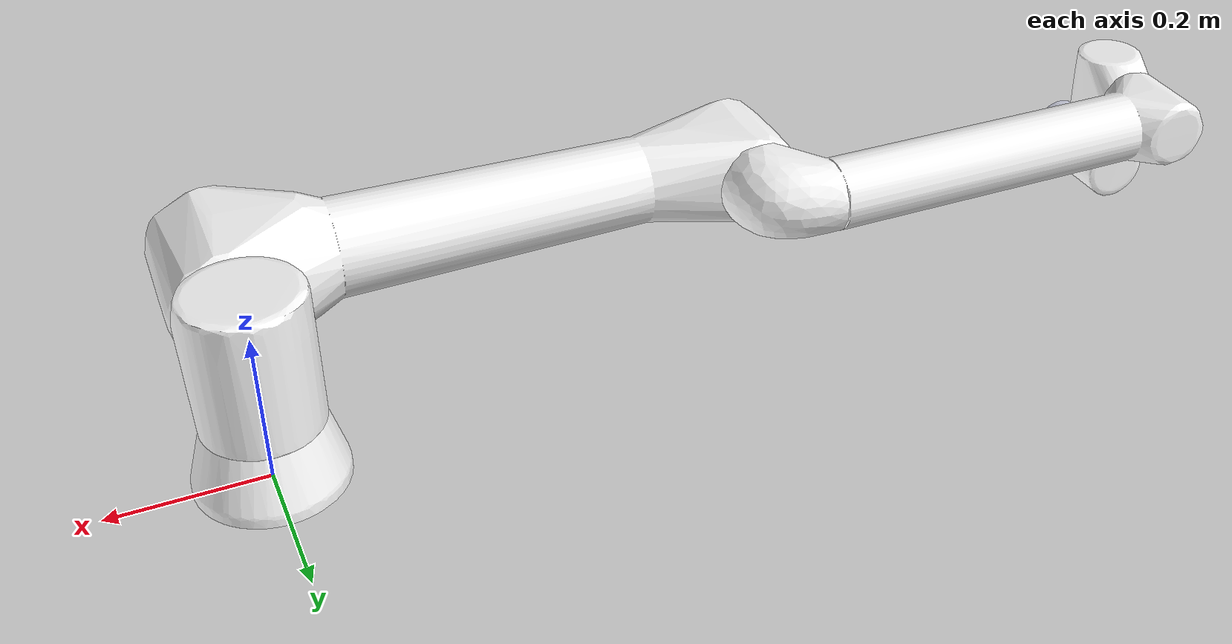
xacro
<?xml version="1.0" encoding="utf-8"?>
<!-- This URDF was artisanally crafted by Jacob Beck (jbeck@spaceroboticsworkers.com) -->
<robot xmlns:xacro="http://wiki.ros.org/xacro" name="fairino10_v6_robot">
  <!-- Declare arguments -->
  <xacro:arg name="namespace" default="" />
  <xacro:arg name="prefix" default="" />
  <xacro:arg name="parent" default="world" />
  <xacro:arg name="xyz" default="0 0 0" />
  <xacro:arg name="rpy" default="0 0 0" />
  <xacro:arg name="mode" default="mock" />
  <xacro:arg name="control_yaml"
    default="$(find fairino10_v6_moveit2_config)/config/ros2_controllers.yaml" />

  <!-- Include required macros -->
  <xacro:include filename="$(find fairino_description)/urdf/fairino10_v6/fairino10_v6.ros2_control.xacro" />
  <xacro:include
    filename="$(find fairino_description)/urdf/fairino10_v6/fairino10_v6.description.xacro" />
  <xacro:include filename="$(find fairino_description)/urdf/fairino10_v6/fairino10_v6.gazebo.xacro" />

  <!-- Build robot -->
  <link name="world" />

  <xacro:fairino10_v6_description prefix="$(arg prefix)" parent="$(arg parent)">
    <origin xyz="$(arg xyz)" rpy="$(arg rpy)" />
  </xacro:fairino10_v6_description>

  <xacro:fairino10_v6_ros2_control prefix="$(arg prefix)" mode="$(arg mode)" />

  <xacro:property name="mode" value="$(arg mode)" /> <!-- Get arg as property for evaluation -->
  <xacro:if value="${mode == 'gazebo'}">
    <xacro:fairino10_v6_gazebo namespace="$(arg namespace)" control_yaml="$(arg control_yaml)" />
  </xacro:if>
</robot>

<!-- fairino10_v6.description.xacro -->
<!-- This URDF was artisanally crafted by Jacob Beck (jbeck@spaceroboticsworkers.com) -->
<robot xmlns:xacro="http://wiki.ros.org/xacro">
  <xacro:macro name="fairino10_v6_description" params="prefix parent *origin">
    <!-- Include definitions -->
    <xacro:include filename="$(find fairino_description)/urdf/common/materials.xacro" />

    <!-- Connection to parent -->
    <joint name="${prefix}base_joint" type="fixed">
      <xacro:insert_block name="origin" />
      <parent link="${parent}" />
      <child link="${prefix}base_link" />
    </joint>

    <!-- Robot geometry definition -->
    <link name="${prefix}base_link">
      <inertial>
        <origin xyz="-0.00037778 -0.00035367 0.035825" rpy="0 0 0" />
        <mass value="0.73775" />
        <inertia ixx="0.0026263" ixy="1.1085E-05" ixz="-8.5601E-06" iyy="0.0026258"
          iyz="-7.9868E-06" izz="0.0044466" />
      </inertial>
      <visual>
        <origin xyz="0 0 0" rpy="0 0 0" />
        <geometry>
          <mesh filename="package://fairino_description/meshes/fairino10_v6/visual/base_link.stl" />
        </geometry>
        <material name="white" />
      </visual>
      <collision>
        <origin xyz="0 0 0" rpy="0 0 0" />
        <geometry>
          <mesh filename="package://fairino_description/meshes/fairino10_v6/collision/base_link_collision.stl" />
        </geometry>
      </collision>
    </link>

    <joint name="${prefix}j1" type="revolute">
      <origin xyz="0 0 0" rpy="0 0 0" />
      <parent link="${prefix}base_link" />
      <child link="${prefix}shoulder_link" />
      <axis xyz="0 0 1" />
      <limit lower="-3.0543" upper="3.0543" effort="635" velocity="3.15" />
      <calibration rising="0" falling="0" />
      <dynamics damping="0" friction="0" />
      <safety_controller soft_upper_limit="3.0543261" soft_lower_limit="-3.0543261"
        k_position="100.0" k_velocity="40.0" />
    </joint>

    <link name="${prefix}shoulder_link">
      <inertial>
        <origin xyz="-0.0001 -0.02612 0.18" rpy="0 0 0" />
        <mass value="11.97" />
        <inertia ixx="0.04607471" ixy="-0.00001041" ixz="-0.00009371" iyy="0.03493881"
          iyz="0.00133107" izz="0.04467851" />
      </inertial>
      <visual>
        <origin xyz="0 0 0" rpy="0 0 0" />
        <geometry>
          <mesh filename="package://fairino_description/meshes/fairino10_v6/visual/shoulder_link.stl" />
        </geometry>
        <material name="white" />
      </visual>
      <collision>
        <origin xyz="0 0 0" rpy="0 0 0" />
        <geometry>
          <mesh filename="package://fairino_description/meshes/fairino10_v6/collision/shoulder_link_collision.stl" />
        </geometry>
      </collision>
    </link>

    <joint name="${prefix}j2" type="revolute">
      <origin xyz="0 0 0.18" rpy="${pi / 2} 0 0" />
      <parent link="${prefix}shoulder_link" />
      <child link="${prefix}upperarm_link" />
      <axis xyz="0 0 1" />
      <limit lower="-4.6251" upper="1.4835" effort="635" velocity="3.15" />
      <calibration rising="0" falling="0" />
      <dynamics damping="0" friction="0" />
      <safety_controller soft_upper_limit="1.4835" soft_lower_limit="-4.6251" k_position="100.0"
        k_velocity="40.0" />
    </joint>

    <link name="${prefix}upperarm_link">
      <inertial>
        <origin xyz="-0.48027 0.00001 0.16468" rpy="0 0 0" />
        <mass value="19.59" />
        <inertia ixx="0.0649166" ixy="0.00054242" ixz="-0.02821532" iyy="1.81964752"
          iyz="-0.00005779" izz="1.80524518" />
      </inertial>
      <visual>
        <origin xyz="0 0 0" rpy="0 0 0" />
        <geometry>
          <mesh filename="package://fairino_description/meshes/fairino10_v6/visual/upperarm_link.stl" />
        </geometry>
        <material name="white" />
      </visual>
      <collision>
        <origin xyz="0 0 0" rpy="0 0 0" />
        <geometry>
          <mesh filename="package://fairino_description/meshes/fairino10_v6/collision/upperarm_link_collision.stl" />
        </geometry>
      </collision>
    </link>

    <joint name="${prefix}j3" type="revolute">
      <origin xyz="-0.7 0 0" rpy="0 0 0" />
      <parent link="${prefix}upperarm_link" />
      <child link="${prefix}forearm_link" />
      <axis xyz="0 0 1" />
      <limit lower="-2.8274" upper="2.8274" effort="332" velocity="3.15" />
      <calibration rising="0" falling="0" />
      <dynamics damping="0" friction="0" />
      <safety_controller soft_upper_limit="3.0543261" soft_lower_limit="-3.0543261"
        k_position="100.0" k_velocity="40.0" />
    </joint>

    <link name="${prefix}forearm_link">
      <inertial>
        <origin xyz="-0.21122 0.00011 0.05421" rpy="0 0 0" />
        <mass value="3.7" />
        <inertia ixx="0.00642901" ixy="0.00004731" ixz="0.00070041" iyy="0.20273064"
          iyz="0.00000774" izz="0.20206759" />
      </inertial>
      <visual>
        <origin xyz="0 0 0" rpy="0 0 0" />
        <geometry>
          <mesh filename="package://fairino_description/meshes/fairino10_v6/visual/forearm_link.stl" />
        </geometry>
        <material name="white" />
      </visual>
      <collision>
        <origin xyz="0 0 0" rpy="0 0 0" />
        <geometry>
          <mesh filename="package://fairino_description/meshes/fairino10_v6/collision/forearm_link_collision.stl" />
        </geometry>
      </collision>
    </link>

    <joint name="${prefix}j4" type="revolute">
      <origin xyz="-0.586 0 0" rpy="0 0 0" />
      <parent link="${prefix}forearm_link" />
      <child link="${prefix}wrist1_link" />
      <axis xyz="0 0 1" />
      <limit lower="-4.6251" upper="1.4835" effort="110" velocity="3.2" />
      <calibration rising="0" falling="0" />
      <dynamics damping="0" friction="0" />
      <safety_controller soft_upper_limit="3.0543261" soft_lower_limit="-3.0543261"
        k_position="100.0" k_velocity="40.0" />
    </joint>

    <link name="${prefix}wrist1_link">
      <inertial>
        <origin xyz="0.00012 -0.003 0.159" rpy="0 0 0" />
        <mass value="1.69" />
        <inertia ixx="0.00248058" ixy="0.00001495" ixz="0.00002165" iyy="0.00239729"
          iyz="-0.00007228" izz="0.00180628" />
      </inertial>
      <visual>
        <origin xyz="0 0 0" rpy="0 0 0" />
        <geometry>
          <mesh filename="package://fairino_description/meshes/fairino10_v6/visual/wrist1_link.stl" />
        </geometry>
        <material name="white" />
      </visual>
      <collision>
        <origin xyz="0 0 0" rpy="0 0 0" />
        <geometry>
          <mesh filename="package://fairino_description/meshes/fairino10_v6/collision/wrist1_link_collision.stl" />
        </geometry>
      </collision>
    </link>

    <joint name="${prefix}j5" type="revolute">
      <origin xyz="0 0 0.159" rpy="${pi / 2} 0 0" />
      <parent link="${prefix}wrist1_link" />
      <child link="${prefix}wrist2_link" />
      <axis xyz="0 0 1" />
      <limit lower="-3.0543" upper="3.0543" effort="110" velocity="3.2" />
      <calibration rising="0" falling="0" />
      <dynamics damping="0" friction="0" />
      <safety_controller soft_upper_limit="3.0543261" soft_lower_limit="-3.0543261"
        k_position="100.0" k_velocity="40.0" />
    </joint>

    <link name="${prefix}wrist2_link">
      <inertial>
        <origin xyz="-0.00012 0.003 0.114" rpy="0 0 0" />
        <mass value="1.69" />
        <inertia ixx="0.00248058" ixy="0.00001495" ixz="-0.00002165" iyy="0.00239729"
          iyz="0.00007228" izz="0.00180628" />
      </inertial>
      <visual>
        <origin xyz="0 0 0" rpy="0 0 0" />
        <geometry>
          <mesh filename="package://fairino_description/meshes/fairino10_v6/visual/wrist2_link.stl" />
        </geometry>
        <material name="white" />
      </visual>
      <collision>
        <origin xyz="0 0 0" rpy="0 0 0" />
        <geometry>
          <mesh filename="package://fairino_description/meshes/fairino10_v6/collision/wrist2_link_collision.stl" />
        </geometry>
      </collision>
    </link>

    <joint name="${prefix}j6" type="revolute">
      <origin xyz="0 0 0.114" rpy="${-pi / 2} 0 0" />
      <parent link="${prefix}wrist2_link" />
      <child link="${prefix}wrist3_link" />
      <axis xyz="0 0 1" />
      <limit lower="-3.0543" upper="3.0543" effort="110" velocity="3.2" />
      <calibration rising="0" falling="0" />
      <dynamics damping="0" friction="0" />
      <safety_controller soft_upper_limit="3.0543261" soft_lower_limit="-3.0543261"
        k_position="100.0" k_velocity="40.0" />
    </joint>

    <link name="${prefix}wrist3_link">
      <inertial>
        <origin xyz="0.00124 0.00085 0.084" rpy="0 0 0" />
        <mass value="0.35" />
        <inertia ixx="0.00023661" ixy="-0.00000085" ixz="0.00000092" iyy="0.00023501"
          iyz="-0.00000154" izz="0.00036972" />
      </inertial>
      <visual>
        <origin xyz="0 0 0" rpy="0 0 0" />
        <geometry>
          <mesh filename="package://fairino_description/meshes/fairino10_v6/visual/wrist3_link.stl" />
        </geometry>
        <material name="silver" />
      </visual>
      <collision>
        <origin xyz="0 0 0" rpy="0 0 0" />
        <geometry>
          <mesh filename="package://fairino_description/meshes/fairino10_v6/collision/wrist3_link_collision.stl" />
        </geometry>
      </collision>
    </link>
  </xacro:macro>
</robot>

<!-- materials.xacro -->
<!-- This URDF was artisanally crafted by Jacob Beck (jbeck@spaceroboticsworkers.com) -->
<robot xmlns:xacro="http://wiki.ros.org/xacro">
  <!-- Define materials -->
  <material name="white">
    <color rgba="1 1 1 1" />
  </material>
  <material name="silver">
    <color rgba="0.90 0.91 0.98 1" />
  </material>
</robot>
